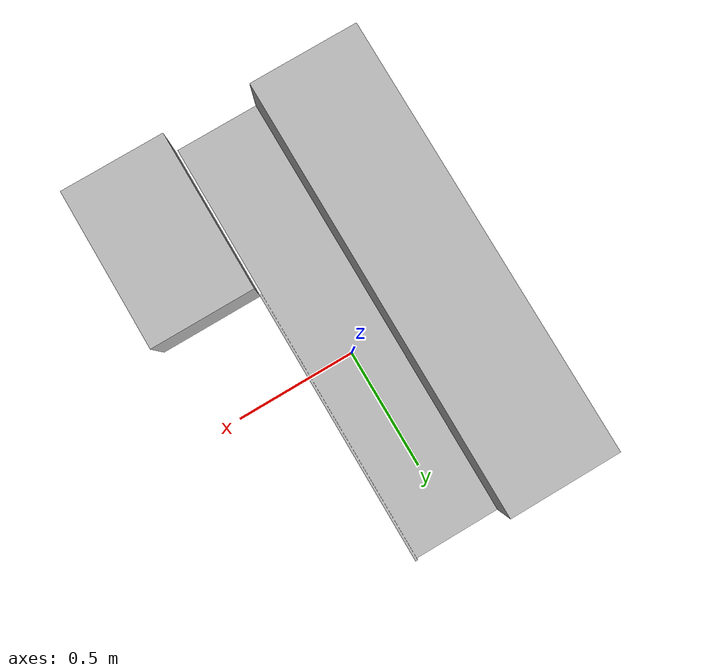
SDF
<sdf version='1.7'>
  <model name='arena'>
    <link name='base_link'>
      <inertial>
        <pose>0.129001 -0.130413 0.53948 0 -0 0</pose>
        <mass>1075.25</mass>
        <inertia>
          <ixx>170.46</ixx>
          <ixy>2.78909</ixy>
          <ixz>0.840198</ixz>
          <iyy>197.514</iyy>
          <iyz>-0.192264</iyz>
          <izz>40.4445</izz>
        </inertia>
      </inertial>
      <collision name='base_link_collision'>
        <pose>0 0 0 0 -0 0</pose>
        <geometry>
          <mesh>
            <scale>1 1 1</scale>
            <uri>model://arena/meshes/base_link.STL</uri>
          </mesh>
        </geometry>
      </collision>
      <visual name='base_link_visual'>
        <pose>0 0 0 0 -0 0</pose>
        <geometry>
          <mesh>
            <scale>1 1 1</scale>
            <uri>model://arena/meshes/base_link.STL</uri>
          </mesh>
        </geometry>
      </visual>
    </link>
  </model>
</sdf>
